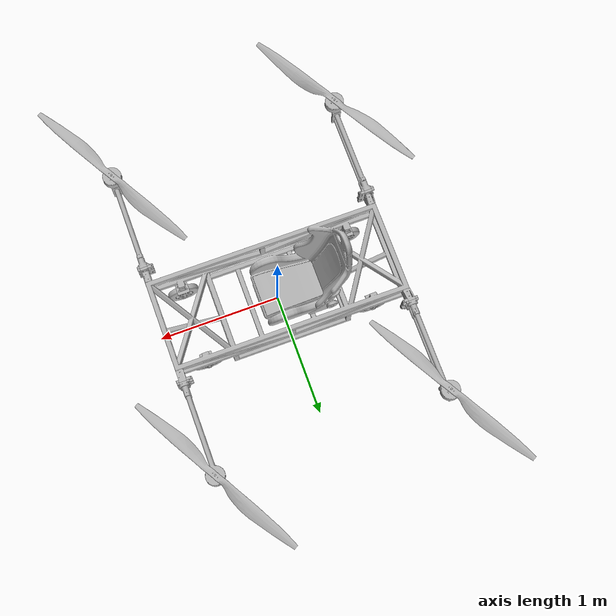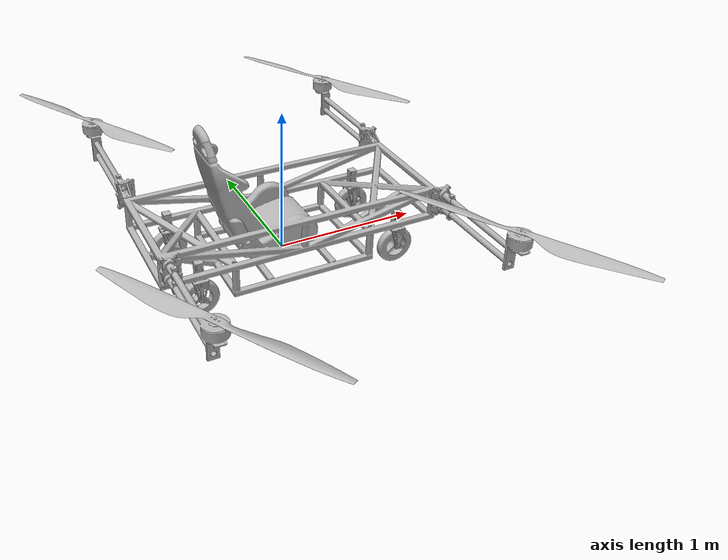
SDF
<?xml version="1.0" encoding="utf-8"?>
<sdf version='1.6'>
  <model name='iris'>
    <static>0</static>
    <link name='base_link'>
      <pose frame=''>0 0 0 0 0 0</pose>
      <inertial>
        <pose>0 0 0 0 0 0</pose>
        <mass>1.8</mass>
        <inertia>
          <ixx>0.3</ixx>
          <ixy>0</ixy>
          <ixz>0</ixz>
          <iyy>0.3</iyy>
          <iyz>0</iyz>
          <izz>0.1</izz>
        </inertia>
      </inertial>
      <collision name='base_link_inertia_collision'>
        <pose>0 0 0 0 0 0</pose>
        <geometry>
          <mesh>
            <scale>1 1 1</scale>
            <uri>model://flying_car_urdf/meshes/base_link.STL</uri>
          </mesh>
        </geometry>
        <surface>
          <contact>
            <collide_bitmask>0x01</collide_bitmask>
          </contact>
        </surface>
      </collision>
      <visual name='base_link_visual'>
        <pose>0 0 0 0 0 0</pose>
        <geometry>
          <mesh>
            <scale>1 1 1</scale>
            <uri>model://flying_car_urdf/meshes/base_link.STL</uri>
          </mesh>
        </geometry>
      </visual>
    </link>
    <link name='FL_arm_link'>
      <pose frame=''>0.94 0.48 0.34 0 -0 1.5708</pose>
      <inertial>
        <pose frame=''>0.405693 0.003148 0.107253 0 -0 0</pose>
        <mass>0.1</mass>
        <inertia>
          <ixx>0.0076495</ixx>
          <ixy>7.20024e-05</ixy>
          <ixz>-2.12112e-07</ixz>
          <iyy>0.033092</iyy>
          <iyz>-1.37631e-08</iyz>
          <izz>0.0321291</izz>
        </inertia>
      </inertial>
      <collision name='FL_arm_link_collision'>
        <pose frame=''>0 0 0 0 -0 0</pose>
        <geometry>
          <mesh>
            <scale>1 1 1</scale>
            <uri>model://flying_car_urdf/meshes/FL_arm_link.STL</uri>
          </mesh>
        </geometry>
        <surface>
          <contact>
            <collide_bitmask>0x02</collide_bitmask>
          </contact>
        </surface>
      </collision>
      <visual name='FL_arm_link_visual'>
        <pose frame=''>0 0 0 0 -0 0</pose>
        <geometry>
          <mesh>
            <scale>1 1 1</scale>
            <uri>model://flying_car_urdf/meshes/FL_arm_link.STL</uri>
          </mesh>
        </geometry>
      </visual>
    </link>
    <joint name='FL_arm_joint' type='revolute'>
      <child>FL_arm_link</child>
      <parent>base_link</parent>
      <axis>
        <xyz>0 0 1</xyz>
        <limit>
          <lower>0</lower>
          <upper>0</upper>
          <effort>100</effort>
          <velocity>1</velocity>
        </limit>
        <dynamics>
          <spring_reference>0</spring_reference>
          <spring_stiffness>0</spring_stiffness>
        </dynamics>
        <use_parent_model_frame>1</use_parent_model_frame>
      </axis>
    </joint>
    <link name='FL_prop_link'>
      <pose frame=''>0.94 1.24505 0.594 1.5708 -0 1.5708</pose>
      <inertial>
        <pose frame=''>0 0 0 0 0 0</pose>
        <mass>0.005</mass>
        <inertia>
          <ixx>9.75e-07</ixx>
          <ixy>0</ixy>
          <ixz>0</ixz>
          <iyy>0.000273104</iyy>
          <iyz>0</iyz>
          <izz>0.000274004</izz>
        </inertia>
      </inertial>
      <collision name='FL_prop_link_collision'>
        <pose frame=''>0 0 0 0 -0 0</pose>
        <geometry>
          <mesh>
            <scale>1 1 1</scale>
            <uri>model://flying_car_urdf/meshes/FL_prop_link.STL</uri>
          </mesh>
        </geometry>
        <surface>
          <contact>
            <collide_bitmask>4</collide_bitmask>
          </contact>
        </surface>
      </collision>
      <visual name='FL_prop_link_visual'>
        <pose frame=''>0 0 0 0 -0 0</pose>
        <geometry>
          <mesh>
            <scale>1 1 1</scale>
            <uri>model://flying_car_urdf/meshes/FL_prop_link.STL</uri>
          </mesh>
        </geometry>
      </visual>
    </link>
    <joint name='FL_prop_joint' type='revolute'>
      <child>FL_prop_link</child>
      <parent>FL_arm_link</parent>
      <axis>
        <xyz>0 0 1</xyz>
        <limit>
          <lower>-1e+16</lower>
          <upper>1e+16</upper>
        </limit>
        <dynamics>
          <spring_reference>0</spring_reference>
          <spring_stiffness>0</spring_stiffness>
        </dynamics>
        <use_parent_model_frame>1</use_parent_model_frame>
      </axis>
    </joint>
    <link name='FL_steer_link'>
      <pose frame=''>0.707 0.308 0.15 0 -0 0</pose>
      <inertial>
        <pose frame=''>0 0 -0.045213 0 -0 0</pose>
        <mass>0.03</mass>
        <inertia>
          <ixx>0.000349257</ixx>
          <ixy>1.45518e-14</ixy>
          <ixz>1.39566e-19</ixz>
          <iyy>0.000450897</iyy>
          <iyz>2.42538e-20</iyz>
          <izz>0.000182393</izz>
        </inertia>
      </inertial>
      <collision name='FL_steer_link_collision'>
        <pose frame=''>0 0 0 0 -0 0</pose>
        <geometry>
          <mesh>
            <scale>1 1 1</scale>
            <uri>model://flying_car_urdf/meshes/FL_steer_link.STL</uri>
          </mesh>
        </geometry>
      </collision>
      <visual name='FL_steer_link_visual'>
        <pose frame=''>0 0 0 0 -0 0</pose>
        <geometry>
          <mesh>
            <scale>1 1 1</scale>
            <uri>model://flying_car_urdf/meshes/FL_steer_link.STL</uri>
          </mesh>
        </geometry>
      </visual>
    </link>
    <joint name='FL_steer_joint' type='revolute'>
      <child>FL_steer_link</child>
      <parent>base_link</parent>
      <axis>
        <xyz>0 0 1</xyz>
        <limit>
          <lower>-1.57</lower>
          <upper>1.57</upper>
          <effort>1</effort>
          <velocity>1</velocity>
        </limit>
        <dynamics>
          <spring_reference>0</spring_reference>
          <spring_stiffness>0</spring_stiffness>
        </dynamics>
        <use_parent_model_frame>1</use_parent_model_frame>
      </axis>
    </joint>
    <link name='FL_wheel_link'>
      <pose frame=''>0.707 0.308 0.005 1.5708 -0 1.5708</pose>
      <inertial>
        <pose frame=''>-0 -0 0 0 -0 0</pose>
        <mass>0.04</mass>
        <inertia>
          <ixx>0.0177302</ixx>
          <ixy>5.8538e-20</ixy>
          <ixz>3.0583e-18</ixz>
          <iyy>0.0092579</iyy>
          <iyz>-3.9272e-18</iyz>
          <izz>0.0092579</izz>
        </inertia>
      </inertial>
      <collision name='FL_wheel_link_collision'>
        <pose frame=''>0 0 0 0 -0 0</pose>
        <geometry>
          <mesh>
            <scale>1 1 1</scale>
            <uri>model://flying_car_urdf/meshes/FL_wheel_link.STL</uri>
          </mesh>
        </geometry>
      </collision>
      <visual name='FL_wheel_link_visual'>
        <pose frame=''>0 0 0 0 -0 0</pose>
        <geometry>
          <mesh>
            <scale>1 1 1</scale>
            <uri>model://flying_car_urdf/meshes/FL_wheel_link.STL</uri>
          </mesh>
        </geometry>
      </visual>
    </link>
    <joint name='FL_wheel_joint' type='revolute'>
      <child>FL_wheel_link</child>
      <parent>FL_steer_link</parent>
      <axis>
        <xyz>0 -1 -0</xyz>
        <limit>
          <lower>-1e+16</lower>
          <upper>1e+16</upper>
        </limit>
        <dynamics>
          <spring_reference>0</spring_reference>
          <spring_stiffness>0</spring_stiffness>
        </dynamics>
        <use_parent_model_frame>1</use_parent_model_frame>
      </axis>
    </joint>
    <link name='FR_arm_link'>
      <pose frame=''>0.94 -0.48 0.44 -1.5708 -0 -1.5708</pose>
      <inertial>
        <pose frame=''>0.405693 -0.007253 -0.003148 0 -0 0</pose>
        <mass>0.1</mass>
        <inertia>
          <ixx>0.0076495</ixx>
          <ixy>2.12112e-07</ixy>
          <ixz>-7.20022e-05</ixz>
          <iyy>0.0321291</iyy>
          <iyz>1.37631e-08</iyz>
          <izz>0.033092</izz>
        </inertia>
      </inertial>
      <collision name='FR_arm_link_collision'>
        <pose frame=''>0 0 0 0 -0 0</pose>
        <geometry>
          <mesh>
            <scale>1 1 1</scale>
            <uri>model://flying_car_urdf/meshes/FR_arm_link.STL</uri>
          </mesh>
        </geometry>
        <surface>
          <contact>
            <collide_bitmask>8</collide_bitmask>
          </contact>
        </surface>
      </collision>
      <visual name='FR_arm_link_visual'>
        <pose frame=''>0 0 0 0 -0 0</pose>
        <geometry>
          <mesh>
            <scale>1 1 1</scale>
            <uri>model://flying_car_urdf/meshes/FR_arm_link.STL</uri>
          </mesh>
        </geometry>
      </visual>
    </link>
    <joint name='FR_arm_joint' type='revolute'>
      <child>FR_arm_link</child>
      <parent>base_link</parent>
      <axis>
        <xyz>0 0 1</xyz>
        <limit>
          <lower>0</lower>
          <upper>0</upper>
          <effort>100</effort>
          <velocity>1</velocity>
        </limit>
        <dynamics>
          <spring_reference>0</spring_reference>
          <spring_stiffness>0</spring_stiffness>
        </dynamics>
        <use_parent_model_frame>1</use_parent_model_frame>
      </axis>
    </joint>
    <link name='FR_prop_link'>
      <pose frame=''>0.94 -1.24505 0.594 1.5708 0 1.57079</pose>
      <inertial>
        <pose frame=''>0 0 0 0 0 0</pose>
        <mass>0.005</mass>
        <inertia>
          <ixx>9.75e-07</ixx>
          <ixy>0</ixy>
          <ixz>0</ixz>
          <iyy>0.000273104</iyy>
          <iyz>0</iyz>
          <izz>0.000274004</izz>
        </inertia>
      </inertial>
      <collision name='FR_prop_link_collision'>
        <pose frame=''>0 0 0 0 -0 0</pose>
        <geometry>
          <mesh>
            <scale>1 1 1</scale>
            <uri>model://flying_car_urdf/meshes/FR_prop_link.STL</uri>
          </mesh>
        </geometry>
        <surface>
          <contact>
            <collide_bitmask>16</collide_bitmask>
          </contact>
        </surface>
      </collision>
      <visual name='FR_prop_link_visual'>
        <pose frame=''>0 0 0 0 -0 0</pose>
        <geometry>
          <mesh>
            <scale>1 1 1</scale>
            <uri>model://flying_car_urdf/meshes/FR_prop_link.STL</uri>
          </mesh>
        </geometry>
      </visual>
    </link>
    <joint name='FR_prop_joint' type='revolute'>
      <child>FR_prop_link</child>
      <parent>FR_arm_link</parent>
      <axis>
        <xyz>0 0 1</xyz>
        <limit>
          <lower>-1e+16</lower>
          <upper>1e+16</upper>
        </limit>
        <dynamics>
          <spring_reference>0</spring_reference>
          <spring_stiffness>0</spring_stiffness>
        </dynamics>
        <use_parent_model_frame>1</use_parent_model_frame>
      </axis>
    </joint>
    <link name='FR_steer_link'>
      <pose frame=''>0.707 -0.308 0.15 0 -0 0</pose>
      <inertial>
        <pose frame=''>-0 0 -0.045213 0 -0 0</pose>
        <mass>0.03</mass>
        <inertia>
          <ixx>0.000349257</ixx>
          <ixy>1.45518e-14</ixy>
          <ixz>-7.92478e-19</ixz>
          <iyy>0.000450897</iyy>
          <iyz>1.54271e-20</iyz>
          <izz>0.000182393</izz>
        </inertia>
      </inertial>
      <collision name='FR_steer_link_collision'>
        <pose frame=''>0 0 0 0 -0 0</pose>
        <geometry>
          <mesh>
            <scale>1 1 1</scale>
            <uri>model://flying_car_urdf/meshes/FR_steer_link.STL</uri>
          </mesh>
        </geometry>
      </collision>
      <visual name='FR_steer_link_visual'>
        <pose frame=''>0 0 0 0 -0 0</pose>
        <geometry>
          <mesh>
            <scale>1 1 1</scale>
            <uri>model://flying_car_urdf/meshes/FR_steer_link.STL</uri>
          </mesh>
        </geometry>
      </visual>
    </link>
    <joint name='FR_steer_joint' type='revolute'>
      <child>FR_steer_link</child>
      <parent>base_link</parent>
      <axis>
        <xyz>0 0 1</xyz>
        <limit>
          <lower>-1.57</lower>
          <upper>1.57</upper>
          <effort>1</effort>
          <velocity>1</velocity>
        </limit>
        <dynamics>
          <spring_reference>0</spring_reference>
          <spring_stiffness>0</spring_stiffness>
        </dynamics>
        <use_parent_model_frame>1</use_parent_model_frame>
      </axis>
    </joint>
    <link name='FR_wheel_link'>
      <pose frame=''>0.707 -0.308 0.005 1.5708 -0 1.5708</pose>
      <inertial>
        <pose frame=''>-0 -0 0 0 -0 0</pose>
        <mass>0.04</mass>
        <inertia>
          <ixx>0.0177302</ixx>
          <ixy>-4.28723e-19</ixy>
          <ixz>2.20679e-18</ixz>
          <iyy>0.0092579</iyy>
          <iyz>-3.12343e-18</iyz>
          <izz>0.0092579</izz>
        </inertia>
      </inertial>
      <collision name='FR_wheel_link_collision'>
        <pose frame=''>0 0 0 0 -0 0</pose>
        <geometry>
          <mesh>
            <scale>1 1 1</scale>
            <uri>model://flying_car_urdf/meshes/FR_wheel_link.STL</uri>
          </mesh>
        </geometry>
      </collision>
      <visual name='FR_wheel_link_visual'>
        <pose frame=''>0 0 0 0 -0 0</pose>
        <geometry>
          <mesh>
            <scale>1 1 1</scale>
            <uri>model://flying_car_urdf/meshes/FR_wheel_link.STL</uri>
          </mesh>
        </geometry>
      </visual>
    </link>
    <joint name='FR_wheel_joint' type='revolute'>
      <child>FR_wheel_link</child>
      <parent>FR_steer_link</parent>
      <axis>
        <xyz>-0 1 0</xyz>
        <limit>
          <lower>-1e+16</lower>
          <upper>1e+16</upper>
        </limit>
        <dynamics>
          <spring_reference>0</spring_reference>
          <spring_stiffness>0</spring_stiffness>
        </dynamics>
        <use_parent_model_frame>1</use_parent_model_frame>
      </axis>
    </joint>
    <link name='RL_arm_link'>
      <pose frame=''>-0.94 0.48 0.44 1.5708 -0 1.5708</pose>
      <inertial>
        <pose frame=''>0.405693 0.007253 0.003148 0 -0 0</pose>
        <mass>0.1</mass>
        <inertia>
          <ixx>0.0076495</ixx>
          <ixy>-2.12112e-07</ixy>
          <ixz>7.20022e-05</ixz>
          <iyy>0.0321291</iyy>
          <iyz>1.37631e-08</iyz>
          <izz>0.033092</izz>
        </inertia>
      </inertial>
      <collision name='RL_arm_link_collision'>
        <pose frame=''>0 0 0 0 -0 0</pose>
        <geometry>
          <mesh>
            <scale>1 1 1</scale>
            <uri>model://flying_car_urdf/meshes/RL_arm_link.STL</uri>
          </mesh>
        </geometry>
        <surface>
          <contact>
            <collide_bitmask>32</collide_bitmask>
          </contact>
        </surface>
      </collision>
      <visual name='RL_arm_link_visual'>
        <pose frame=''>0 0 0 0 -0 0</pose>
        <geometry>
          <mesh>
            <scale>1 1 1</scale>
            <uri>model://flying_car_urdf/meshes/RL_arm_link.STL</uri>
          </mesh>
        </geometry>
      </visual>
    </link>
    <joint name='RL_arm_joint' type='revolute'>
      <child>RL_arm_link</child>
      <parent>base_link</parent>
      <axis>
        <xyz>0 0 1</xyz>
        <limit>
          <lower>0</lower>
          <upper>0</upper>
          <effort>100</effort>
          <velocity>1</velocity>
        </limit>
        <dynamics>
          <spring_reference>0</spring_reference>
          <spring_stiffness>0</spring_stiffness>
        </dynamics>
        <use_parent_model_frame>1</use_parent_model_frame>
      </axis>
    </joint>
    <link name='RL_prop_link'>
      <pose frame=''>-0.940002 1.24505 0.594 1.5708 -0 1.5708</pose>
      <inertial>
        <pose frame=''>0 0 0 0 0 0</pose>
        <mass>0.005</mass>
        <inertia>
          <ixx>9.75e-07</ixx>
          <ixy>0</ixy>
          <ixz>0</ixz>
          <iyy>0.000273104</iyy>
          <iyz>0</iyz>
          <izz>0.000274004</izz>
        </inertia>
      </inertial>
      <collision name='RL_prop_link_collision'>
        <pose frame=''>0 0 0 0 -0 0</pose>
        <geometry>
          <mesh>
            <scale>1 1 1</scale>
            <uri>model://flying_car_urdf/meshes/RL_prop_link.STL</uri>
          </mesh>
        </geometry>
        <surface>
          <contact>
            <collide_bitmask>64</collide_bitmask>
          </contact>
        </surface>
      </collision>
      <visual name='RL_prop_link_visual'>
        <pose frame=''>0 0 0 0 -0 0</pose>
        <geometry>
          <mesh>
            <scale>1 1 1</scale>
            <uri>model://flying_car_urdf/meshes/RL_prop_link.STL</uri>
          </mesh>
        </geometry>
      </visual>
    </link>
    <joint name='RL_prop_joint' type='revolute'>
      <child>RL_prop_link</child>
      <parent>RL_arm_link</parent>
      <axis>
        <xyz>0 0 1</xyz>
        <limit>
          <lower>-1e+16</lower>
          <upper>1e+16</upper>
        </limit>
        <dynamics>
          <spring_reference>0</spring_reference>
          <spring_stiffness>0</spring_stiffness>
        </dynamics>
        <use_parent_model_frame>1</use_parent_model_frame>
      </axis>
    </joint>
    <link name='RL_steer_link'>
      <pose frame=''>-0.707 0.308 0.15 0 -0 0</pose>
      <inertial>
        <pose frame=''>0 -0 -0.045213 0 -0 0</pose>
        <mass>0.03</mass>
        <inertia>
          <ixx>0.000349257</ixx>
          <ixy>1.45516e-14</ixy>
          <ixz>-2.9833e-20</ixz>
          <iyy>0.000450897</iyy>
          <iyz>3.99501e-20</iyz>
          <izz>0.000182393</izz>
        </inertia>
      </inertial>
      <collision name='RL_steer_link_collision'>
        <pose frame=''>0 0 0 0 -0 0</pose>
        <geometry>
          <mesh>
            <scale>1 1 1</scale>
            <uri>model://flying_car_urdf/meshes/RL_steer_link.STL</uri>
          </mesh>
        </geometry>
      </collision>
      <visual name='RL_steer_link_visual'>
        <pose frame=''>0 0 0 0 -0 0</pose>
        <geometry>
          <mesh>
            <scale>1 1 1</scale>
            <uri>model://flying_car_urdf/meshes/RL_steer_link.STL</uri>
          </mesh>
        </geometry>
      </visual>
    </link>
    <joint name='RL_steer_joint' type='revolute'>
      <child>RL_steer_link</child>
      <parent>base_link</parent>
      <axis>
        <xyz>0 0 1</xyz>
        <limit>
          <lower>0</lower>
          <upper>0</upper>
          <effort>0</effort>
          <velocity>0</velocity>
        </limit>
        <dynamics>
          <spring_reference>0</spring_reference>
          <spring_stiffness>0</spring_stiffness>
        </dynamics>
        <use_parent_model_frame>1</use_parent_model_frame>
      </axis>
    </joint>
    <link name='RL_wheel_link'>
      <pose frame=''>-0.707 0.3085 0.005 1.5708 -0 1.5708</pose>
      <inertial>
        <pose frame=''>-0 0 -0 0 -0 0</pose>
        <mass>0.04</mass>
        <inertia>
          <ixx>0.0177302</ixx>
          <ixy>1.75741e-19</ixy>
          <ixz>-3.86956e-18</ixz>
          <iyy>0.0092579</iyy>
          <iyz>-1.63877e-18</iyz>
          <izz>0.0092579</izz>
        </inertia>
      </inertial>
      <collision name='RL_wheel_link_collision'>
        <pose frame=''>0 0 0 0 -0 0</pose>
        <geometry>
          <mesh>
            <scale>1 1 1</scale>
            <uri>model://flying_car_urdf/meshes/RL_wheel_link.STL</uri>
          </mesh>
        </geometry>
      </collision>
      <visual name='RL_wheel_link_visual'>
        <pose frame=''>0 0 0 0 -0 0</pose>
        <geometry>
          <mesh>
            <scale>1 1 1</scale>
            <uri>model://flying_car_urdf/meshes/RL_wheel_link.STL</uri>
          </mesh>
        </geometry>
      </visual>
    </link>
    <joint name='RL_wheel_joint' type='revolute'>
      <child>RL_wheel_link</child>
      <parent>RL_steer_link</parent>
      <axis>
        <xyz>-0 1 0</xyz>
        <limit>
          <lower>-1e+16</lower>
          <upper>1e+16</upper>
        </limit>
        <dynamics>
          <spring_reference>0</spring_reference>
          <spring_stiffness>0</spring_stiffness>
        </dynamics>
        <use_parent_model_frame>1</use_parent_model_frame>
      </axis>
    </joint>
    <link name='RR_arm_link'>
      <pose frame=''>-0.94 -0.48 0.34 0 0 -1.5708</pose>
      <inertial>
        <pose frame=''>0.405693 0.003148 0.107253 0 -0 0</pose>
        <mass>0.1</mass>
        <inertia>
          <ixx>0.0076495</ixx>
          <ixy>7.20024e-05</ixy>
          <ixz>-2.12112e-07</ixz>
          <iyy>0.033092</iyy>
          <iyz>-1.37631e-08</iyz>
          <izz>0.0321291</izz>
        </inertia>
      </inertial>
      <collision name='RR_arm_link_collision'>
        <pose frame=''>0 0 0 0 -0 0</pose>
        <geometry>
          <mesh>
            <scale>1 1 1</scale>
            <uri>model://flying_car_urdf/meshes/RR_arm_link.STL</uri>
          </mesh>
        </geometry>
        <surface>
          <contact>
            <collide_bitmask>128</collide_bitmask>
          </contact>
        </surface>
      </collision>
      <visual name='RR_arm_link_visual'>
        <pose frame=''>0 0 0 0 -0 0</pose>
        <geometry>
          <mesh>
            <scale>1 1 1</scale>
            <uri>model://flying_car_urdf/meshes/RR_arm_link.STL</uri>
          </mesh>
        </geometry>
      </visual>
    </link>
    <joint name='RR_arm_joint' type='revolute'>
      <child>RR_arm_link</child>
      <parent>base_link</parent>
      <axis>
        <xyz>0 0 1</xyz>
        <limit>
          <lower>0</lower>
          <upper>0</upper>
          <effort>100</effort>
          <velocity>1</velocity>
        </limit>
        <dynamics>
          <spring_reference>0</spring_reference>
          <spring_stiffness>0</spring_stiffness>
        </dynamics>
        <use_parent_model_frame>1</use_parent_model_frame>
      </axis>
    </joint>
    <link name='RR_prop_link'>
      <pose frame=''>-0.940003 -1.24505 0.594 1.5708 -0 1.57079</pose>
      <inertial>
        <pose frame=''>0 0 0 0 0 0</pose>
        <mass>0.005</mass>
        <inertia>
          <ixx>9.75e-07</ixx>
          <ixy>0</ixy>
          <ixz>0</ixz>
          <iyy>0.000273104</iyy>
          <iyz>0</iyz>
          <izz>0.000274004</izz>
        </inertia>
      </inertial>
      <collision name='RR_prop_link_collision'>
        <pose frame=''>0 0 0 0 -0 0</pose>
        <geometry>
          <mesh>
            <scale>1 1 1</scale>
            <uri>model://flying_car_urdf/meshes/RR_prop_link.STL</uri>
          </mesh>
        </geometry>
        <surface>
          <contact>
            <collide_bitmask>256</collide_bitmask>
          </contact>
        </surface>
      </collision>
      <visual name='RR_prop_link_visual'>
        <pose frame=''>0 0 0 0 -0 0</pose>
        <geometry>
          <mesh>
            <scale>1 1 1</scale>
            <uri>model://flying_car_urdf/meshes/RR_prop_link.STL</uri>
          </mesh>
        </geometry>
      </visual>
    </link>
    <joint name='RR_prop_joint' type='revolute'>
      <child>RR_prop_link</child>
      <parent>RR_arm_link</parent>
      <axis>
        <xyz>0 0 1</xyz>
        <limit>
          <lower>-1e+16</lower>
          <upper>1e+16</upper>
        </limit>
        <dynamics>
          <spring_reference>0</spring_reference>
          <spring_stiffness>0</spring_stiffness>
        </dynamics>
        <use_parent_model_frame>1</use_parent_model_frame>
      </axis>
    </joint>
    <link name='RR_steer_link'>
      <pose frame=''>-0.707 -0.308 0.15 0 -0 0</pose>
      <inertial>
        <pose frame=''>0 0 -0.045213 0 -0 0</pose>
        <mass>0.03</mass>
        <inertia>
          <ixx>0.000349257</ixx>
          <ixy>1.45517e-14</ixy>
          <ixz>2.46153e-19</ixz>
          <iyy>0.000450897</iyy>
          <iyz>3.50516e-22</iyz>
          <izz>0.000182393</izz>
        </inertia>
      </inertial>
      <collision name='RR_steer_link_collision'>
        <pose frame=''>0 0 0 0 -0 0</pose>
        <geometry>
          <mesh>
            <scale>1 1 1</scale>
            <uri>model://flying_car_urdf/meshes/RR_steer_link.STL</uri>
          </mesh>
        </geometry>
      </collision>
      <visual name='RR_steer_link_visual'>
        <pose frame=''>0 0 0 0 -0 0</pose>
        <geometry>
          <mesh>
            <scale>1 1 1</scale>
            <uri>model://flying_car_urdf/meshes/RR_steer_link.STL</uri>
          </mesh>
        </geometry>
      </visual>
    </link>
    <joint name='RR_steer_joint' type='revolute'>
      <child>RR_steer_link</child>
      <parent>base_link</parent>
      <axis>
        <xyz>0 0 1</xyz>
        <limit>
          <lower>0</lower>
          <upper>0</upper>
          <effort>0</effort>
          <velocity>0</velocity>
        </limit>
        <dynamics>
          <spring_reference>0</spring_reference>
          <spring_stiffness>0</spring_stiffness>
        </dynamics>
        <use_parent_model_frame>1</use_parent_model_frame>
      </axis>
    </joint>
    <link name='RR_wheel_link'>
      <pose frame=''>-0.707 -0.308 0.005 1.5708 -0 1.5708</pose>
      <inertial>
        <pose frame=''>0 0 -0 0 -0 0</pose>
        <mass>0.04</mass>
        <inertia>
          <ixx>0.0177302</ixx>
          <ixy>-1.19673e-18</ixy>
          <ixz>9.76883e-19</ixz>
          <iyy>0.0092579</iyy>
          <iyz>-2.48054e-18</iyz>
          <izz>0.0092579</izz>
        </inertia>
      </inertial>
      <collision name='RR_wheel_link_collision'>
        <pose frame=''>0 0 0 0 -0 0</pose>
        <geometry>
          <mesh>
            <scale>1 1 1</scale>
            <uri>model://flying_car_urdf/meshes/RR_wheel_link.STL</uri>
          </mesh>
        </geometry>
      </collision>
      <visual name='RR_wheel_link_visual'>
        <pose frame=''>0 0 0 0 -0 0</pose>
        <geometry>
          <mesh>
            <scale>1 1 1</scale>
            <uri>model://flying_car_urdf/meshes/RR_wheel_link.STL</uri>
          </mesh>
        </geometry>
      </visual>
    </link>
    <joint name='RR_wheel_joint' type='revolute'>
      <child>RR_wheel_link</child>
      <parent>RR_steer_link</parent>
      <axis>
        <xyz>-0 1 0</xyz>
        <limit>
          <lower>-1e+16</lower>
          <upper>1e+16</upper>
        </limit>
        <dynamics>
          <spring_reference>0</spring_reference>
          <spring_stiffness>0</spring_stiffness>
        </dynamics>
        <use_parent_model_frame>1</use_parent_model_frame>
      </axis>
    </joint>
    <link name='imu_link'>
      <pose>0 0 0.1 0 0 0</pose>
      <inertial>
        <pose>0 0 0 0 0 0</pose>
        <mass>0.01</mass>
        <inertia>
          <ixx>1e-05</ixx>
          <ixy>0</ixy>
          <ixz>0</ixz>
          <iyy>1e-05</iyy>
          <iyz>0</iyz>
          <izz>1e-05</izz>
        </inertia>
      </inertial>
      <visual name='visual'>
        <geometry>
          <cylinder>
            <radius>0.01</radius>
            <length>0.002</length>
          </cylinder>
        </geometry>
        <material>
          <script>
            <name>Gazebo/Red</name>
            <uri>__default__</uri>
          </script>
        </material>
      </visual>
    </link>
    <joint name='imu_joint' type='revolute'>
      <child>imu_link</child>
      <parent>base_link</parent>
      <axis>
        <xyz>1 0 0</xyz>
        <limit>
          <lower>0</lower>
          <upper>0</upper>
          <effort>0</effort>
          <velocity>0</velocity>
        </limit>
        <dynamics>
          <spring_reference>0</spring_reference>
          <spring_stiffness>0</spring_stiffness>
        </dynamics>
        <use_parent_model_frame>1</use_parent_model_frame>
      </axis>
    </joint>
    <plugin name='rosbag' filename='libgazebo_multirotor_base_plugin.so'>
      <robotNamespace/>
      <linkName>base_link</linkName>
      <rotorVelocitySlowdownSim>10</rotorVelocitySlowdownSim>
    </plugin>
    <plugin name='front_right_motor_model' filename='libgazebo_motor_model.so'>
      <robotNamespace/>
      <jointName>FR_prop_joint</jointName>
      <linkName>FR_prop_link</linkName>
      <turningDirection>ccw</turningDirection>
      <timeConstantUp>0.0125</timeConstantUp>
      <timeConstantDown>0.025</timeConstantDown>
      <maxRotVelocity>1500</maxRotVelocity>
      <motorConstant>9e-05</motorConstant>
      <momentConstant>0.06</momentConstant>
      <commandSubTopic>/gazebo/command/motor_speed</commandSubTopic>
      <motorNumber>0</motorNumber>
      <rotorDragCoefficient>0.000175</rotorDragCoefficient>
      <rollingMomentCoefficient>5e-06</rollingMomentCoefficient>
      <motorSpeedPubTopic>/motor_speed/0</motorSpeedPubTopic>
      <rotorVelocitySlowdownSim>10</rotorVelocitySlowdownSim>
    </plugin>
    <plugin name='back_left_motor_model' filename='libgazebo_motor_model.so'>
      <robotNamespace/>
      <jointName>RL_prop_joint</jointName>
      <linkName>RL_prop_link</linkName>
      <turningDirection>ccw</turningDirection>
      <timeConstantUp>0.0125</timeConstantUp>
      <timeConstantDown>0.025</timeConstantDown>
      <maxRotVelocity>1500</maxRotVelocity>
      <motorConstant>9e-05</motorConstant>
      <momentConstant>0.06</momentConstant>
      <commandSubTopic>/gazebo/command/motor_speed</commandSubTopic>
      <motorNumber>1</motorNumber>
      <rotorDragCoefficient>0.000175</rotorDragCoefficient>
      <rollingMomentCoefficient>5e-06</rollingMomentCoefficient>
      <motorSpeedPubTopic>/motor_speed/1</motorSpeedPubTopic>
      <rotorVelocitySlowdownSim>10</rotorVelocitySlowdownSim>
    </plugin>
    <plugin name='front_left_motor_model' filename='libgazebo_motor_model.so'>
      <robotNamespace/>
      <jointName>FL_prop_joint</jointName>
      <linkName>FL_prop_link</linkName>
      <turningDirection>cw</turningDirection>
      <timeConstantUp>0.0125</timeConstantUp>
      <timeConstantDown>0.025</timeConstantDown>
      <maxRotVelocity>1500</maxRotVelocity>
      <motorConstant>9e-05</motorConstant>
      <momentConstant>0.06</momentConstant>
      <commandSubTopic>/gazebo/command/motor_speed</commandSubTopic>
      <motorNumber>2</motorNumber>
      <rotorDragCoefficient>0.000175</rotorDragCoefficient>
      <rollingMomentCoefficient>5e-06</rollingMomentCoefficient>
      <motorSpeedPubTopic>/motor_speed/2</motorSpeedPubTopic>
      <rotorVelocitySlowdownSim>10</rotorVelocitySlowdownSim>
    </plugin>
    <plugin name='back_right_motor_model' filename='libgazebo_motor_model.so'>
      <robotNamespace/>
      <jointName>RR_prop_joint</jointName>
      <linkName>RR_prop_link</linkName>
      <turningDirection>cw</turningDirection>
      <timeConstantUp>0.0125</timeConstantUp>
      <timeConstantDown>0.025</timeConstantDown>
      <maxRotVelocity>1500</maxRotVelocity>
      <motorConstant>9e-05</motorConstant>
      <momentConstant>0.06</momentConstant>
      <commandSubTopic>/gazebo/command/motor_speed</commandSubTopic>
      <motorNumber>3</motorNumber>
      <rotorDragCoefficient>0.000175</rotorDragCoefficient>
      <rollingMomentCoefficient>5e-06</rollingMomentCoefficient>
      <motorSpeedPubTopic>/motor_speed/3</motorSpeedPubTopic>
      <rotorVelocitySlowdownSim>10</rotorVelocitySlowdownSim>
    </plugin>
    <model name='gps0'>
      <link name='link'>
        <pose>0 0 0 0 0 0</pose>
        <inertial>
          <pose>0 0 0 0 0 0</pose>
          <mass>0.01</mass>
          <inertia>
            <ixx>2.1733e-06</ixx>
            <ixy>0</ixy>
            <ixz>0</ixz>
            <iyy>2.1733e-06</iyy>
            <iyz>0</iyz>
            <izz>1.8e-07</izz>
          </inertia>
        </inertial>
        <visual name='visual'>
          <geometry>
            <cylinder>
              <radius>0.01</radius>
              <length>0.002</length>
            </cylinder>
          </geometry>
          <material>
            <script>
              <name>Gazebo/Black</name>
              <uri>__default__</uri>
            </script>
          </material>
        </visual>
        <sensor name='gps' type='gps'>
          <pose>0 0 0 0 0 0</pose>
          <plugin name='gps_plugin' filename='libgazebo_gps_plugin.so'>
            <robotNamespace/>
            <gpsNoise>1</gpsNoise>
            <gpsXYRandomWalk>2.0</gpsXYRandomWalk>
            <gpsZRandomWalk>4.0</gpsZRandomWalk>
            <gpsXYNoiseDensity>0.0002</gpsXYNoiseDensity>
            <gpsZNoiseDensity>0.0004</gpsZNoiseDensity>
            <gpsVXYNoiseDensity>0.2</gpsVXYNoiseDensity>
            <gpsVZNoiseDensity>0.4</gpsVZNoiseDensity>
          </plugin>
        </sensor>
      </link>
    </model>
    <joint name='gps0_joint' type='fixed'>
      <parent>base_link</parent>
      <child>gps0::link</child>
    </joint>
    <plugin name='groundtruth_plugin' filename='libgazebo_groundtruth_plugin.so'>
      <robotNamespace/>
    </plugin>
    <plugin name='magnetometer_plugin' filename='libgazebo_magnetometer_plugin.so'>
      <robotNamespace/>
      <pubRate>100</pubRate>
      <noiseDensity>0.0004</noiseDensity>
      <randomWalk>6.4e-06</randomWalk>
      <biasCorrelationTime>600</biasCorrelationTime>
      <magTopic>/mag</magTopic>
    </plugin>
    <plugin name='barometer_plugin' filename='libgazebo_barometer_plugin.so'>
      <robotNamespace/>
      <pubRate>50</pubRate>
      <baroTopic>/baro</baroTopic>
      <baroDriftPaPerSec>0</baroDriftPaPerSec>
    </plugin>
    <plugin name='mavlink_interface' filename='libgazebo_mavlink_interface.so'>
      <robotNamespace/>
      <imuSubTopic>/imu</imuSubTopic>
      <magSubTopic>/mag</magSubTopic>
      <baroSubTopic>/baro</baroSubTopic>
      <mavlink_addr>INADDR_ANY</mavlink_addr>
      <mavlink_tcp_port>4560</mavlink_tcp_port>
      <mavlink_udp_port>14560</mavlink_udp_port>
      <serialEnabled>0</serialEnabled>
      <serialDevice>/dev/ttyACM0</serialDevice>
      <baudRate>921600</baudRate>
      <qgc_addr>INADDR_ANY</qgc_addr>
      <qgc_udp_port>14550</qgc_udp_port>
      <sdk_addr>INADDR_ANY</sdk_addr>
      <sdk_udp_port>14540</sdk_udp_port>
      <hil_mode>0</hil_mode>
      <hil_state_level>0</hil_state_level>
      <send_vision_estimation>0</send_vision_estimation>
      <send_odometry>1</send_odometry>
      <enable_lockstep>1</enable_lockstep>
      <use_tcp>1</use_tcp>
      <motorSpeedCommandPubTopic>/gazebo/command/motor_speed</motorSpeedCommandPubTopic>
      <control_channels>
        <channel name='rotor1'>
          <input_index>0</input_index>
          <input_offset>0</input_offset>
          <input_scaling>1000</input_scaling>
          <zero_position_disarmed>0</zero_position_disarmed>
          <zero_position_armed>100</zero_position_armed>
          <joint_control_type>velocity</joint_control_type>
        </channel>
        <channel name='rotor2'>
          <input_index>1</input_index>
          <input_offset>0</input_offset>
          <input_scaling>1000</input_scaling>
          <zero_position_disarmed>0</zero_position_disarmed>
          <zero_position_armed>100</zero_position_armed>
          <joint_control_type>velocity</joint_control_type>
        </channel>
        <channel name='rotor3'>
          <input_index>2</input_index>
          <input_offset>0</input_offset>
          <input_scaling>1000</input_scaling>
          <zero_position_disarmed>0</zero_position_disarmed>
          <zero_position_armed>100</zero_position_armed>
          <joint_control_type>velocity</joint_control_type>
        </channel>
        <channel name='rotor4'>
          <input_index>3</input_index>
          <input_offset>0</input_offset>
          <input_scaling>1000</input_scaling>
          <zero_position_disarmed>0</zero_position_disarmed>
          <zero_position_armed>100</zero_position_armed>
          <joint_control_type>velocity</joint_control_type>
        </channel>
        <channel name='rotor5'>
          <input_index>4</input_index>
          <input_offset>1</input_offset>
          <input_scaling>324.6</input_scaling>
          <zero_position_disarmed>0</zero_position_disarmed>
          <zero_position_armed>0</zero_position_armed>
          <joint_control_type>velocity</joint_control_type>
          <joint_control_pid>
            <p>0.1</p>
            <i>0</i>
            <d>0</d>
            <iMax>0.0</iMax>
            <iMin>0.0</iMin>
            <cmdMax>2</cmdMax>
            <cmdMin>-2</cmdMin>
          </joint_control_pid>
          <joint_name>zephyr_delta_wing::propeller_joint</joint_name>
        </channel>
        <channel name='rotor6'>
          <input_index>5</input_index>
          <input_offset>0</input_offset>
          <input_scaling>0.524</input_scaling>
          <zero_position_disarmed>0</zero_position_disarmed>
          <zero_position_armed>0</zero_position_armed>
          <joint_control_type>position</joint_control_type>
          <joint_name>zephyr_delta_wing::flap_left_joint</joint_name>
          <joint_control_pid>
            <p>10.0</p>
            <i>0</i>
            <d>0</d>
            <iMax>0</iMax>
            <iMin>0</iMin>
            <cmdMax>20</cmdMax>
            <cmdMin>-20</cmdMin>
          </joint_control_pid>
        </channel>
        <channel name='rotor7'>
          <input_index>6</input_index>
          <input_offset>0</input_offset>
          <input_scaling>0.524</input_scaling>
          <zero_position_disarmed>0</zero_position_disarmed>
          <zero_position_armed>0</zero_position_armed>
          <joint_control_type>position</joint_control_type>
          <joint_name>zephyr_delta_wing::flap_right_joint</joint_name>
          <joint_control_pid>
            <p>10.0</p>
            <i>0</i>
            <d>0</d>
            <iMax>0</iMax>
            <iMin>0</iMin>
            <cmdMax>20</cmdMax>
            <cmdMin>-20</cmdMin>
          </joint_control_pid>
        </channel>
        <channel name='rotor8'>
          <input_index>7</input_index>
          <input_offset>0</input_offset>
          <input_scaling>0.524</input_scaling>
          <zero_position_disarmed>0</zero_position_disarmed>
          <zero_position_armed>0</zero_position_armed>
          <joint_control_type>position</joint_control_type>
        </channel>
      </control_channels>
    </plugin>
    <plugin name='rotors_gazebo_imu_plugin' filename='libgazebo_imu_plugin.so'>
      <robotNamespace/>
      <linkName>imu_link</linkName>
      <imuTopic>/imu</imuTopic>
      <gyroscopeNoiseDensity>0.00018665</gyroscopeNoiseDensity>
      <gyroscopeRandomWalk>3.8785e-05</gyroscopeRandomWalk>
      <gyroscopeBiasCorrelationTime>1000.0</gyroscopeBiasCorrelationTime>
      <gyroscopeTurnOnBiasSigma>0.0087</gyroscopeTurnOnBiasSigma>
      <accelerometerNoiseDensity>0.00186</accelerometerNoiseDensity>
      <accelerometerRandomWalk>0.006</accelerometerRandomWalk>
      <accelerometerBiasCorrelationTime>300.0</accelerometerBiasCorrelationTime>
      <accelerometerTurnOnBiasSigma>0.196</accelerometerTurnOnBiasSigma>
    </plugin>
  </model>
</sdf>
